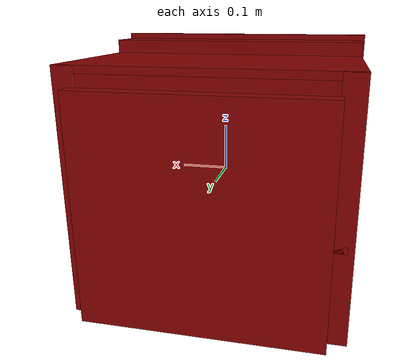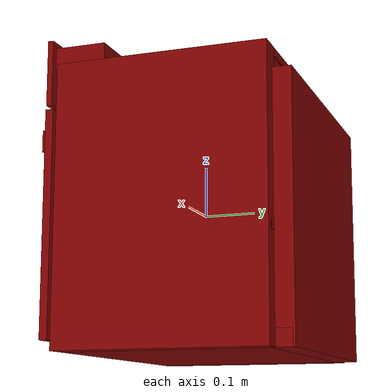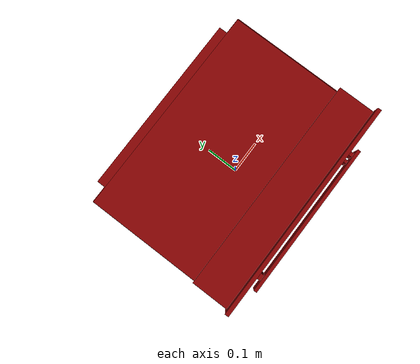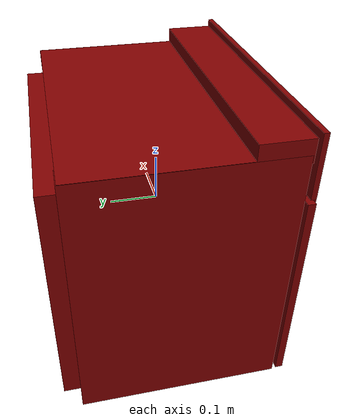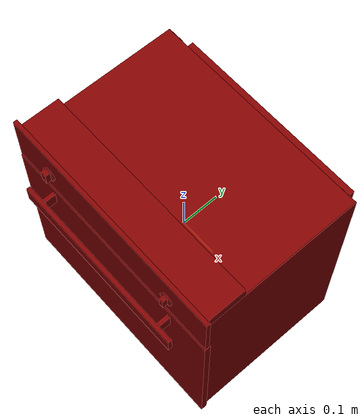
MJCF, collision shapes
<?xml version='1.0' encoding='UTF-8'?>
<mujoco model="model">
  <option timestep="0.002" gravity="0.0 0.0 -9.81"/>
  <compiler angle="radian"/>
  <asset>
    <mesh file="visuals/door.obj" name="door_vis"/>
    <mesh file="visuals/door_Clear.obj" name="door_Clear_vis"/>
    <mesh file="visuals/knob_temp.obj" name="knob_temp_vis"/>
    <mesh file="visuals/knob_time.obj" name="knob_time_vis"/>
    <mesh file="visuals/Body001.obj" name="Body001_vis"/>
    <mesh file="visuals/rack0.obj" name="rack0_vis"/>
    <texture file="visuals/T_BC001.png" name="Body001_material" type="2d"/>
    <material name="Body001_material" rgba="1 1 1 1.0" texture="Body001_material" shininess="2" specular="2"/>
    <texture file="visuals/T_BC001.png" name="door_material" type="2d"/>
    <material name="door_material" rgba="1 1 1 1.0" texture="door_material" shininess="2" specular="2"/>
    <texture file="visuals/T_BC001.png" name="door_Clear_material" type="2d"/>
    <material name="door_Clear_material" rgba="1 1 1 0.699999988079071" texture="door_Clear_material" shininess="0.4472135901451111" specular="0.3103448502657381"/>
    <texture file="visuals/T_BC001.png" name="knob_temp_material" type="2d"/>
    <material name="knob_temp_material" rgba="1 1 1 1.0" texture="knob_temp_material" shininess="2" specular="2"/>
    <texture file="visuals/T_BC001.png" name="knob_time_material" type="2d"/>
    <material name="knob_time_material" rgba="1 1 1 1.0" texture="knob_time_material" shininess="2" specular="2"/>
    <texture file="visuals/T_BC001.png" name="rack0_material" type="2d"/>
    <material name="rack0_material" rgba="1 1 1 1.0" texture="rack0_material" shininess="10" specular="10"/>
  </asset>
  <default>
    <default class="visual">
      <geom conaffinity="0" contype="0" group="1" type="mesh"/>
    </default>
    <default class="collision">
      <geom group="0" rgba="0.5 0 0 0.5"/>
    </default>
    <default class="spawn">
      <geom group="0" rgba="1 1 1 0.5" contype="0" conaffinity="0"/>
      <site group="0" rgba="1 1 1 0.5"/>
    </default>
    <default class="region">
      <geom group="1" conaffinity="0" contype="0" rgba="0 1 0 0"/>
    </default>
  </default>
  <worldbody>
    <body>
      <body name="object">
        <geom mesh="Body001_vis" type="mesh" solimp="0.998 0.998 0.001" solref="0.001 1" friction="0.95 0.3 0.1" class="visual" material="Body001_material"/>
        <geom class="collision" type="box" pos="0.0036485434975475073 0.026164568960666656 -0.26862743496894836" size="0.2562950849533081 0.2194117158651352 0.0160211194306612" quat="1.0 0.0 0.0 0.0"/>
        <geom class="collision" type="box" pos="0.00037573702866211534 -0.14688922464847565 0.2580581605434418" size="0.2923491895198822 0.04925039783120155 0.02305760234594345" quat="1.0 0.0 0.0 0.0"/>
        <geom class="collision" type="box" pos="0.270212858915329 0.010397876612842083 -0.01717800833284855" size="0.022564467042684555 0.20385317504405975 0.2674706280231476" quat="1.0 0.0 0.0 0.0"/>
        <geom class="collision" type="box" pos="0.003648503217846155 0.22688975930213928 -0.03816913813352585" size="0.2562950849533081 0.022894399240612984 0.24647952616214752" quat="1.0 0.0 0.0 0.0"/>
        <geom class="collision" type="box" pos="-0.2698238492012024 0.010749321430921555 -0.01717788726091385" size="0.02227742038667202 0.20433248579502106 0.2674705982208252" quat="1.0 0.0 0.0 0.0"/>
        <geom class="collision" type="box" pos="0.0008535127271898091 -0.20376631617546082 0.23093034327030182" size="0.3015323877334595 0.0051789721474051476 0.06286300718784332" quat="1.0 0.0 0.0 0.0"/>
        <geom class="collision" type="box" pos="-0.0005636496935039759 0.054787397384643555 0.24291394650936127" size="0.29126429557800293 0.15879592299461365 0.007913381792604923" quat="1.0 0.0 0.0 0.0"/>
        <geom class="collision" type="box" pos="-0.0005636496935039759 0.011139614507555962 0.18300725519657135" size="0.29126429557800293 0.20087198913097382 0.05562765151262283" quat="1.0 0.0 0.0 0.0"/>
        <geom class="collision" type="box" pos="-0.26018422842025757 0.010749321430921555 -0.0775279849767685" size="0.018690381199121475 0.20433248579502106 0.007204629946500063" quat="1.0 0.0 0.0 0.0"/>
        <geom class="collision" type="box" pos="0.26071929931640625 0.010749321430921555 -0.0775279849767685" size="0.018690381199121475 0.20433248579502106 0.007204629946500063" quat="1.0 0.0 0.0 0.0"/>
        <body name="door">
          <joint axis="1.0 0.0 0.0" pos="-2.7241185307502747e-08 -0.2091325733345002 -0.25860852003097534" limited="true" name="door_joint" range="0.0 1.15" type="hinge" damping="1" frictionloss="1" armature="1" stiffness="2"/>
          <geom mesh="door_vis" type="mesh" solimp="0.998 0.998 0.001" solref="0.001 1" friction="0.95 0.3 0.1" class="visual" material="door_material"/>
          <geom class="collision" type="box" pos="-0.00011509700561873615 -0.18671053647994995 -0.063985675573349" size="0.16974835097789764 0.02312706783413887 0.11725851148366928" quat="1.0 0.0 0.0 0.0"/>
          <geom class="collision" type="box" pos="0.00021027046022936702 -0.24558785557746887 0.12031503021717072" size="0.2364659607410431 0.004871560726314783 0.021221816539764404" quat="1.0 0.0 0.0 0.0" name="door_handle_main"/>
          <geom class="collision" type="box" pos="-2.7241185307502747e-08 -0.2066633254289627 -0.05289776623249054" size="0.29230979084968567 0.002469247905537486 0.2057107537984848" quat="1.0 0.0 0.0 0.0" name="door_main"/>
          <geom class="collision" type="box" pos="-2.7241185307502747e-08 -0.2023862898349762 -0.05289776623249054" size="0.3026792109012604 0.00757393054664135 0.21300794184207916" quat="1.0 0.0 0.0 0.0"/>
          <geom class="collision" type="box" pos="0.000809674384072423 -0.1849035620689392 -0.06381364911794662" size="0.2355872243642807 0.015448592603206635 0.15736016631126404" quat="1.0 0.0 0.0 0.0"/>
          <geom class="collision" type="box" pos="-0.19080062210559845 -0.22386781871318817 0.11951617151498795" size="0.004963255021721125 0.013645332306623459 0.01652720756828785" quat="1.0 0.0 0.0 0.0"/>
          <geom class="collision" type="box" pos="0.19109149277210236 -0.2241317182779312 0.11951617151498795" size="0.005040575750172138 0.014064193703234196 0.01703452318906784" quat="1.0 0.0 0.0 0.0"/>
          <body name="door_Clear">
            <geom mesh="door_Clear_vis" type="mesh" solimp="0.998 0.998 0.001" solref="0.001 1" friction="0.95 0.3 0.1" class="visual" material="door_Clear_material"/>
            <geom class="collision" type="box" pos="-0.00011509700561873615 -0.18671053647994995 -0.063985675573349" size="0.16974835097789764 0.02312706783413887 0.11725851148366928" quat="1.0 0.0 0.0 0.0"/>
          </body>
        </body>
        <body name="knob_temp">
          <joint axis="0.0 1.0 0.0" pos="-0.18860964477062225 -0.2151881605386734 0.22701320052146912" limited="true" name="knob_temp_joint" range="0.0 5.672320068981571" type="hinge" damping="0.05" armature="1" frictionloss="0.75"/>
          <geom mesh="knob_temp_vis" type="mesh" solimp="0.998 0.998 0.001" solref="0.001 1" friction="0.95 0.3 0.1" class="visual" material="knob_temp_material"/>
          <geom class="collision" type="cylinder" pos="-0.18860964477062225 -0.21126912534236908 0.22701320052146912" size="0.01806890033185482 0.001686516567133367" quat="0.7071067094802856 0.70710688829422 0.0 0.0" friction="100 0.5 0.01"/>
          <geom class="collision" type="box" pos="-0.18892881274223328 -0.2192915976047516 0.22771893441677094" size="0.008250432088971138 0.006144003476947546 0.014450949616730213" name="knob_temp_main" friction="100 0.5 0.01"/>
        </body>
        <body name="knob_time">
          <joint axis="0.0 -1.0 0.0" pos="0.18736279010772705 -0.21518810093402863 0.2260352224111557" limited="true" name="knob_time_joint" range="-1.0471975511965976 3.141592653589793" type="hinge" damping="0.05" armature="1" frictionloss="0.75"/>
          <geom mesh="knob_time_vis" type="mesh" solimp="0.998 0.998 0.001" solref="0.001 1" friction="0.95 0.3 0.1" class="visual" material="knob_time_material"/>
          <geom class="collision" type="cylinder" pos="0.18736279010772705 -0.21164454519748688 0.2260352224111557" size="0.017057839781045914 0.0015851097414270043" quat="0.7071067094802856 0.70710688829422 0.0 0.0" friction="100 0.5 0.01"/>
          <geom class="collision" type="box" pos="0.18736279010772705 -0.21928387880325317 0.2260352224111557" size="0.005599156953394413 0.00600207457318902 0.01411654893308878" name="knob_time_main" friction="100 0.5 0.01"/>
        </body>
        <body name="rack0">
          <geom class="region" name="reg_rack0" type="box" pos="-0.0010650604963302612 0.0030625537037849426 0.037124184891581535" size="0.22614808177947998 0.10877022689580917 0.07767193002998829"/>
          <joint axis="0.0 -1.0 0.0" pos="-0.00016339743160642684 -0.007416689768433571 -0.05134786665439606" limited="true" name="rack0_joint" range="0.0 0.25" type="slide" damping="1" frictionloss="1" armature=".01" stiffness="0.05"/>
          <geom mesh="rack0_vis" type="mesh" solimp="0.998 0.998 0.001" solref="0.001 1" friction="0.95 0.3 0.1" class="visual" material="rack0_material"/>
          <geom class="collision" type="box" pos="0.0007616223301738501 0.007533419877290726 -0.0505601242184639" size="0.22974561154842377 0.11763344705104828 0.004281292669475079" quat="1.0 0.0 0.0 0.0"/>
          <geom class="collision" type="box" pos="-0.23280572891235352 0.007533419877290726 -0.05446662753820419" size="0.003588530234992504 0.11763344705104828 0.008187798783183098" quat="1.0 0.0 0.0 0.0"/>
          <geom class="collision" type="box" pos="-0.23885826766490936 0.007533419877290726 -0.0616755336523056" size="0.008271798491477966 0.11763344705104828 0.003153639379888773" quat="1.0 0.0 0.0 0.0"/>
          <geom class="collision" type="box" pos="0.239342600107193 0.007533419877290726 -0.0616755336523056" size="0.007913187146186829 0.11763344705104828 0.0031536570750176907" quat="1.0 0.0 0.0 0.0"/>
          <geom class="collision" type="box" pos="0.23364868760108948 0.007533419877290726 -0.05446662753820419" size="0.003588530234992504 0.11763344705104828 0.008187816478312016" quat="1.0 0.0 0.0 0.0"/>
          <geom class="collision" type="box" pos="-0.0004590924072545022 0.12103569507598877 -0.03318101167678833" size="0.13294032216072083 0.0013344165636226535 0.001764212385751307" quat="1.0 0.0 0.0 0.0"/>
          <geom class="collision" type="box" pos="0.1314210146665573 0.12103569507598877 -0.041403479874134064" size="0.0010602232068777084 0.0013344165636226535 0.00998667348176241" quat="1.0 0.0 0.0 0.0"/>
          <geom class="collision" type="box" pos="-0.1326598823070526 0.12103569507598877 -0.041403479874134064" size="0.0010602232068777084 0.0013344165636226535 0.00998667348176241" quat="1.0 0.0 0.0 0.0"/>
        </body>
        <geom class="region" name="reg_int" type="box" pos="-0.00021081417798995972 0.02428893744945526 -0.07548198476433754" size="0.2409211898446083 0.1743691841363907 0.17067331990599632"/>
        <geom class="region" name="reg_main" type="box" pos="0.0 0.01992619037628174 0.0" size="0.3036808500289917 0.23088641262054443 0.29479335045814514"/>
      </body>
    </body>
  </worldbody>
  <actuator>
    <motor name="door_joint_actuator" joint="door_joint" gear="50"/>
    <motor name="knob_temp_joint_actuator" joint="knob_temp_joint" gear="50"/>
    <motor name="knob_time_joint_actuator" joint="knob_time_joint" gear="50"/>
    <motor name="rack0_joint_actuator" joint="rack0_joint" gear="50"/>
  </actuator>
</mujoco>
